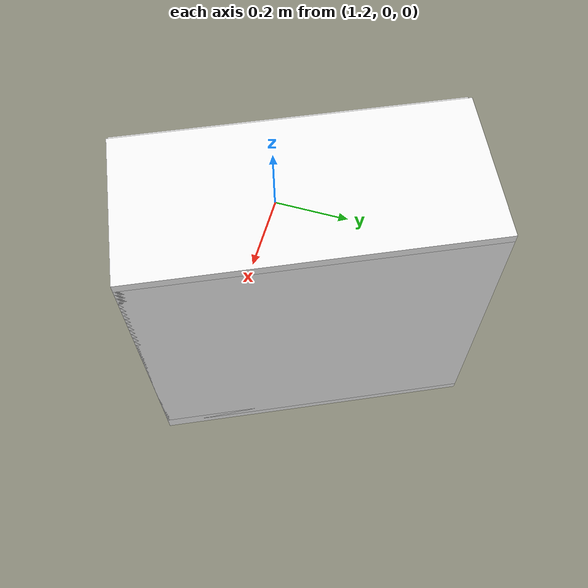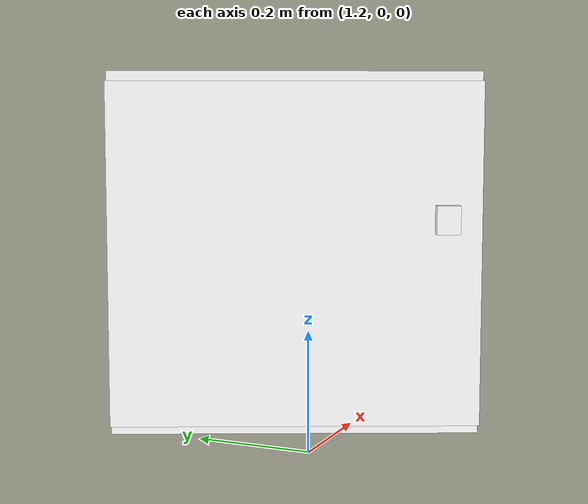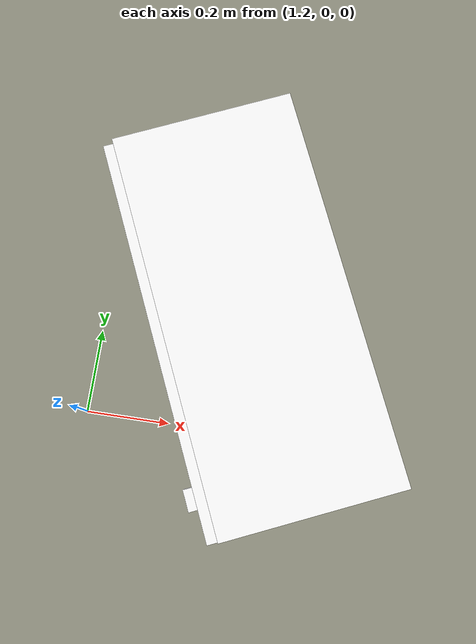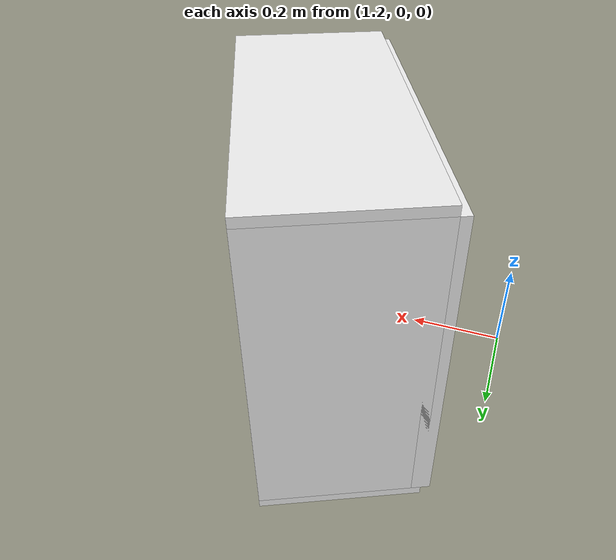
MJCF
<mujoco model="cabinet">
    <compiler angle="radian" eulerseq='zxy' />
    <option gravity = "0 0 0" />
    <option>
        <flag contact = "disable"/>
    </option>
    <statistic	extent="1.0" center="0.0 0.0 0.0"/>
    <visual>
        <map fogstart="3" fogend="5" force="0.1" znear=" 0.100000 " zfar=" 12.000000 "/>
    </visual>
    <size njmax="500" nconmax="100" />
    <actuator>
        <velocity joint="bottom_left_hinge" name="viva_revolution" kv='10'></velocity>
    </actuator>
    <asset>
        <texture builtin="flat" name="tabletex" height="32" width="32" rgb1="1 1 1" type="cube"></texture>
        <texture builtin="flat" name="objtex" height="32" width="32" rgb1="1 1 1" type="cube"></texture>
        <texture builtin="flat" name="handletex" height="32" width="32" rgb1="1 1 1" type="cube"></texture>
        <texture builtin="flat" name="wallpaper" height="32" width="32" rgb1="1 1 1" type="cube"></texture>
        <material name="geomTable" shininess="0.03" specular="0.75" texture="tabletex"></material>
        <material name="geomObj" shininess="0.03" specular="0.75" texture="objtex"></material>
        <material name="geomHandle" shininess="0.03" specular="0.75" texture="handletex"></material>
        <material name="bg" shininess="0.03" specular="0.75" texture="wallpaper"></material>
    </asset>
    <worldbody>
            <body name="cabinet_bottom" pos= " 1.569968 0.185077 -0.021681 "  quat= " -0.208821 0.000000 0.000000 0.977954" >
                <inertial pos="0 0 0" mass="1" diaginertia="1 1 1" />
                <geom size= " 0.155381 0.340989 0.018299 "  type="box" material="geomObj" name="b"/>
                <body name="cabinet_left" pos= " 0.000000 -0.322690 0.316273 " >
                    <inertial pos="0 0 0" mass="1" diaginertia="1 1 1" />
                    <geom size= " 0.155381 0.018299 0.316273 "  type="box" material="geomObj" name="c" />
                </body>
                <body name="cabinet_right" pos= " 0.000000 0.322690 0.316273 " >
                    <inertial pos="0 0 0" mass="1" diaginertia="1 1 1" />
                    <geom size= " 0.155381 0.018299 0.316273 "  type="box" material="geomObj" name="d" />
                </body>
                <body name="cabinet_top" pos= " 0.000000 0.000000 0.632547 " >
                    <inertial pos="0 0 0" mass="1" diaginertia="1 1 1" />
                    <geom size= " 0.155381 0.340989 0.018299 "  type="box" material="geomObj" name="e"/>
                </body>
                <body name="cabinet_back" pos= " -0.137082 0.000000 0.316273 "  >
                    <inertial pos="0 0 0" mass="1" diaginertia="1 1 1" />
                    <geom size= " 0.018299 0.340989 0.316273 "  type="box" material="geomObj" name="f" />
                </body>
                <body name="cabinet_left_hinge" pos= " 0.155381 -0.340989 0.316273 " >
                    <inertial pos= " 0.000000 0.340989 0.000000 "  mass="1" diaginertia="1 1 1" />
                    <joint name="bottom_left_hinge" type="hinge" pos="0 0 0" axis="0 0 1" limited="true" range= "-2.3 0"  />
                    <geom size= " 0.018299 0.340989 0.316273 "  pos= " 0.000000 0.340989 0.000000 "  type="box" material="geomObj" name="g"/>
                    <body name="handle_link" pos= " 0.038845 0.615898 0.067425 " >
                        <inertial pos="0 0 0" mass="1" diaginertia="1 1 1" />
                        <geom size= " 0.012564 0.021529 0.026137 "  type="box" material="geomHandle" name="h"/>
                    </body>
                </body>
            </body>
        <body name="external_camera_body_0" pos="0.0 0 0.00">
            <camera euler="-1.57 1.57 0.0" fovy=" 54.280851 " name="external_camera_0" pos="0.0 0 0"></camera>
            <inertial pos= " 0.00 0.0 0.000000 " mass="1" diaginertia="1 1 1" />
            <joint name="cam_j" pos="0.0 0 0" axis = "1 0 0" type="free" />
        </body>
    </worldbody>
</mujoco>
